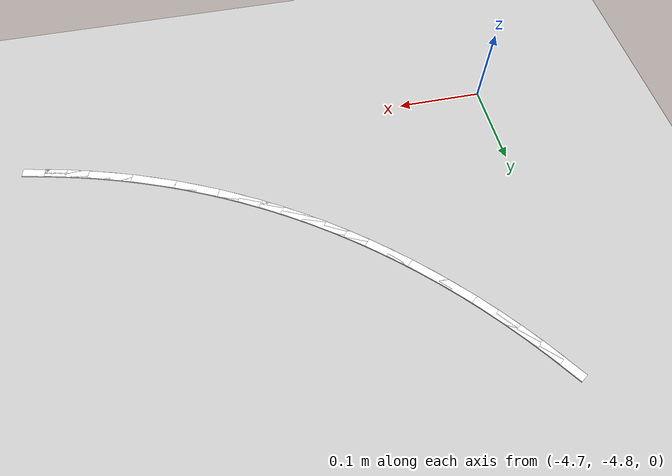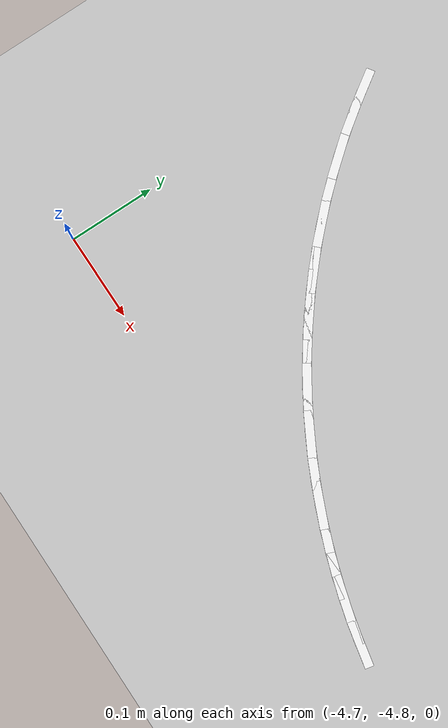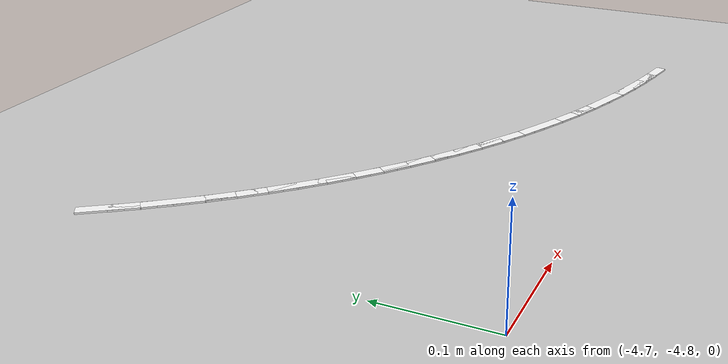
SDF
<sdf version="1.7">
 <world name="default">
  <model name="ground_plane">
   <static>1</static>
   <link name="link">
    <collision name="collision">
     <geometry><plane><normal>0 0 1</normal><size>100 100</size></plane></geometry>
     <surface>
      <contact><collide_bitmask>65535</collide_bitmask></contact>
      <friction><ode><mu>100</mu><mu2>50</mu2></ode></friction>
     </surface>
    </collision>
    <visual name="visual">
     <cast_shadows>0</cast_shadows>
     <geometry><plane><normal>0 0 1</normal><size>100 100</size></plane></geometry>
     <material>
      <script><uri>file://media/materials/scripts/gazebo.material</uri><name>Gazebo/Grey</name></script>
     </material>
    </visual>
   </link>
  </model>
  <model name="lane_line_left_368">
   <static>1</static>
   <link name="link">
    <pose>0 0 -0.004 0 -0 0</pose>
    <visual name="visual">
     <geometry><box><size>0.0521 0.01 0.01</size></box></geometry>
     <material><ambient>1 1 1 1</ambient><diffuse>1 1 1 1</diffuse></material>
    </visual>
    <collision name="collision"><geometry><box><size>0.0521 0.01 0.01</size></box></geometry></collision>
   </link>
   <pose>-4.66328 -4.44705 0 0 0 -0.977741</pose>
  </model>
  <model name="lane_line_left_369">
   <static>1</static>
   <link name="link">
    <pose>0 0 -0.004 0 -0 0</pose>
    <visual name="visual">
     <geometry><box><size>0.0521 0.01 0.01</size></box></geometry>
     <material><ambient>1 1 1 1</ambient><diffuse>1 1 1 1</diffuse></material>
    </visual>
    <collision name="collision"><geometry><box><size>0.0521 0.01 0.01</size></box></geometry></collision>
   </link>
   <pose>-4.64861 -4.46808 0 0 0 -0.945684</pose>
  </model>
  <model name="lane_line_left_370">
   <static>1</static>
   <link name="link">
    <pose>0 0 -0.004 0 -0 0</pose>
    <visual name="visual">
     <geometry><box><size>0.0521 0.01 0.01</size></box></geometry>
     <material><ambient>1 1 1 1</ambient><diffuse>1 1 1 1</diffuse></material>
    </visual>
    <collision name="collision"><geometry><box><size>0.0521 0.01 0.01</size></box></geometry></collision>
   </link>
   <pose>-4.63328 -4.48862 0 0 0 -0.913626</pose>
  </model>
  <model name="lane_line_left_371">
   <static>1</static>
   <link name="link">
    <pose>0 0 -0.004 0 -0 0</pose>
    <visual name="visual">
     <geometry><box><size>0.0521 0.01 0.01</size></box></geometry>
     <material><ambient>1 1 1 1</ambient><diffuse>1 1 1 1</diffuse></material>
    </visual>
    <collision name="collision"><geometry><box><size>0.0521 0.01 0.01</size></box></geometry></collision>
   </link>
   <pose>-4.61729 -4.50867 0 0 0 -0.881569</pose>
  </model>
  <model name="lane_line_left_372">
   <static>1</static>
   <link name="link">
    <pose>0 0 -0.004 0 -0 0</pose>
    <visual name="visual">
     <geometry><box><size>0.0521 0.01 0.01</size></box></geometry>
     <material><ambient>1 1 1 1</ambient><diffuse>1 1 1 1</diffuse></material>
    </visual>
    <collision name="collision"><geometry><box><size>0.0521 0.01 0.01</size></box></geometry></collision>
   </link>
   <pose>-4.60067 -4.52819 0 0 0 -0.849512</pose>
  </model>
  <model name="lane_line_left_373">
   <static>1</static>
   <link name="link">
    <pose>0 0 -0.004 0 -0 0</pose>
    <visual name="visual">
     <geometry><box><size>0.0521 0.01 0.01</size></box></geometry>
     <material><ambient>1 1 1 1</ambient><diffuse>1 1 1 1</diffuse></material>
    </visual>
    <collision name="collision"><geometry><box><size>0.0521 0.01 0.01</size></box></geometry></collision>
   </link>
   <pose>-4.58343 -4.54718 0 0 0 -0.817455</pose>
  </model>
  <model name="lane_line_left_374">
   <static>1</static>
   <link name="link">
    <pose>0 0 -0.004 0 -0 0</pose>
    <visual name="visual">
     <geometry><box><size>0.0521 0.01 0.01</size></box></geometry>
     <material><ambient>1 1 1 1</ambient><diffuse>1 1 1 1</diffuse></material>
    </visual>
    <collision name="collision"><geometry><box><size>0.0521 0.01 0.01</size></box></geometry></collision>
   </link>
   <pose>-4.56559 -4.56559 0 0 0 -0.785398</pose>
  </model>
  <model name="lane_line_left_375">
   <static>1</static>
   <link name="link">
    <pose>0 0 -0.004 0 -0 0</pose>
    <visual name="visual">
     <geometry><box><size>0.0521 0.01 0.01</size></box></geometry>
     <material><ambient>1 1 1 1</ambient><diffuse>1 1 1 1</diffuse></material>
    </visual>
    <collision name="collision"><geometry><box><size>0.0521 0.01 0.01</size></box></geometry></collision>
   </link>
   <pose>-4.54718 -4.58343 0 0 0 -0.753341</pose>
  </model>
  <model name="lane_line_left_376">
   <static>1</static>
   <link name="link">
    <pose>0 0 -0.004 0 -0 0</pose>
    <visual name="visual">
     <geometry><box><size>0.0521 0.01 0.01</size></box></geometry>
     <material><ambient>1 1 1 1</ambient><diffuse>1 1 1 1</diffuse></material>
    </visual>
    <collision name="collision"><geometry><box><size>0.0521 0.01 0.01</size></box></geometry></collision>
   </link>
   <pose>-4.52819 -4.60067 0 0 0 -0.721284</pose>
  </model>
  <model name="lane_line_left_377">
   <static>1</static>
   <link name="link">
    <pose>0 0 -0.004 0 -0 0</pose>
    <visual name="visual">
     <geometry><box><size>0.0521 0.01 0.01</size></box></geometry>
     <material><ambient>1 1 1 1</ambient><diffuse>1 1 1 1</diffuse></material>
    </visual>
    <collision name="collision"><geometry><box><size>0.0521 0.01 0.01</size></box></geometry></collision>
   </link>
   <pose>-4.50867 -4.61729 0 0 0 -0.689227</pose>
  </model>
  <model name="lane_line_left_378">
   <static>1</static>
   <link name="link">
    <pose>0 0 -0.004 0 -0 0</pose>
    <visual name="visual">
     <geometry><box><size>0.0521 0.01 0.01</size></box></geometry>
     <material><ambient>1 1 1 1</ambient><diffuse>1 1 1 1</diffuse></material>
    </visual>
    <collision name="collision"><geometry><box><size>0.0521 0.01 0.01</size></box></geometry></collision>
   </link>
   <pose>-4.48862 -4.63328 0 0 0 -0.65717</pose>
  </model>
  <model name="lane_line_left_379">
   <static>1</static>
   <link name="link">
    <pose>0 0 -0.004 0 -0 0</pose>
    <visual name="visual">
     <geometry><box><size>0.0521 0.01 0.01</size></box></geometry>
     <material><ambient>1 1 1 1</ambient><diffuse>1 1 1 1</diffuse></material>
    </visual>
    <collision name="collision"><geometry><box><size>0.0521 0.01 0.01</size></box></geometry></collision>
   </link>
   <pose>-4.46808 -4.64861 0 0 0 -0.625113</pose>
  </model>
  <model name="lane_line_left_380">
   <static>1</static>
   <link name="link">
    <pose>0 0 -0.004 0 -0 0</pose>
    <visual name="visual">
     <geometry><box><size>0.0521 0.01 0.01</size></box></geometry>
     <material><ambient>1 1 1 1</ambient><diffuse>1 1 1 1</diffuse></material>
    </visual>
    <collision name="collision"><geometry><box><size>0.0521 0.01 0.01</size></box></geometry></collision>
   </link>
   <pose>-4.44705 -4.66328 0 0 0 -0.593056</pose>
  </model>
  <model name="lane_line_left_381">
   <static>1</static>
   <link name="link">
    <pose>0 0 -0.004 0 -0 0</pose>
    <visual name="visual">
     <geometry><box><size>0.0521 0.01 0.01</size></box></geometry>
     <material><ambient>1 1 1 1</ambient><diffuse>1 1 1 1</diffuse></material>
    </visual>
    <collision name="collision"><geometry><box><size>0.0521 0.01 0.01</size></box></geometry></collision>
   </link>
   <pose>-4.42556 -4.67727 0 0 0 -0.560999</pose>
  </model>
  <model name="lane_line_left_382">
   <static>1</static>
   <link name="link">
    <pose>0 0 -0.004 0 -0 0</pose>
    <visual name="visual">
     <geometry><box><size>0.0521 0.01 0.01</size></box></geometry>
     <material><ambient>1 1 1 1</ambient><diffuse>1 1 1 1</diffuse></material>
    </visual>
    <collision name="collision"><geometry><box><size>0.0521 0.01 0.01</size></box></geometry></collision>
   </link>
   <pose>-4.40363 -4.69056 0 0 0 -0.528942</pose>
  </model>
  <model name="lane_line_left_383">
   <static>1</static>
   <link name="link">
    <pose>0 0 -0.004 0 -0 0</pose>
    <visual name="visual">
     <geometry><box><size>0.0521 0.01 0.01</size></box></geometry>
     <material><ambient>1 1 1 1</ambient><diffuse>1 1 1 1</diffuse></material>
    </visual>
    <collision name="collision"><geometry><box><size>0.0521 0.01 0.01</size></box></geometry></collision>
   </link>
   <pose>-4.38129 -4.70314 0 0 0 -0.496885</pose>
  </model>
  <model name="lane_line_left_384">
   <static>1</static>
   <link name="link">
    <pose>0 0 -0.004 0 -0 0</pose>
    <visual name="visual">
     <geometry><box><size>0.0521 0.01 0.01</size></box></geometry>
     <material><ambient>1 1 1 1</ambient><diffuse>1 1 1 1</diffuse></material>
    </visual>
    <collision name="collision"><geometry><box><size>0.0521 0.01 0.01</size></box></geometry></collision>
   </link>
   <pose>-4.35856 -4.715 0 0 0 -0.464827</pose>
  </model>
  <model name="lane_line_left_385">
   <static>1</static>
   <link name="link">
    <pose>0 0 -0.004 0 -0 0</pose>
    <visual name="visual">
     <geometry><box><size>0.0521 0.01 0.01</size></box></geometry>
     <material><ambient>1 1 1 1</ambient><diffuse>1 1 1 1</diffuse></material>
    </visual>
    <collision name="collision"><geometry><box><size>0.0521 0.01 0.01</size></box></geometry></collision>
   </link>
   <pose>-4.33546 -4.72613 0 0 0 -0.43277</pose>
  </model>
  <model name="lane_line_left_386">
   <static>1</static>
   <link name="link">
    <pose>0 0 -0.004 0 -0 0</pose>
    <visual name="visual">
     <geometry><box><size>0.0521 0.01 0.01</size></box></geometry>
     <material><ambient>1 1 1 1</ambient><diffuse>1 1 1 1</diffuse></material>
    </visual>
    <collision name="collision"><geometry><box><size>0.0521 0.01 0.01</size></box></geometry></collision>
   </link>
   <pose>-4.31201 -4.73651 0 0 0 -0.400713</pose>
  </model>
  <model name="lane_line_left_387">
   <static>1</static>
   <link name="link">
    <pose>0 0 -0.004 0 -0 0</pose>
    <visual name="visual">
     <geometry><box><size>0.0521 0.01 0.01</size></box></geometry>
     <material><ambient>1 1 1 1</ambient><diffuse>1 1 1 1</diffuse></material>
    </visual>
    <collision name="collision"><geometry><box><size>0.0521 0.01 0.01</size></box></geometry></collision>
   </link>
   <pose>-4.28824 -4.74613 0 0 0 -0.368656</pose>
  </model>
  <model name="lane_line_left_388">
   <static>1</static>
   <link name="link">
    <pose>0 0 -0.004 0 -0 0</pose>
    <visual name="visual">
     <geometry><box><size>0.0521 0.01 0.01</size></box></geometry>
     <material><ambient>1 1 1 1</ambient><diffuse>1 1 1 1</diffuse></material>
    </visual>
    <collision name="collision"><geometry><box><size>0.0521 0.01 0.01</size></box></geometry></collision>
   </link>
   <pose>-4.26418 -4.75499 0 0 0 -0.336599</pose>
  </model>
  <model name="lane_line_left_389">
   <static>1</static>
   <link name="link">
    <pose>0 0 -0.004 0 -0 0</pose>
    <visual name="visual">
     <geometry><box><size>0.0521 0.01 0.01</size></box></geometry>
     <material><ambient>1 1 1 1</ambient><diffuse>1 1 1 1</diffuse></material>
    </visual>
    <collision name="collision"><geometry><box><size>0.0521 0.01 0.01</size></box></geometry></collision>
   </link>
   <pose>-4.23985 -4.76306 0 0 0 -0.304542</pose>
  </model>
  <model name="lane_line_left_390">
   <static>1</static>
   <link name="link">
    <pose>0 0 -0.004 0 -0 0</pose>
    <visual name="visual">
     <geometry><box><size>0.0521 0.01 0.01</size></box></geometry>
     <material><ambient>1 1 1 1</ambient><diffuse>1 1 1 1</diffuse></material>
    </visual>
    <collision name="collision"><geometry><box><size>0.0521 0.01 0.01</size></box></geometry></collision>
   </link>
   <pose>-4.21527 -4.77036 0 0 0 -0.272485</pose>
  </model>
  <model name="lane_line_left_391">
   <static>1</static>
   <link name="link">
    <pose>0 0 -0.004 0 -0 0</pose>
    <visual name="visual">
     <geometry><box><size>0.0521 0.01 0.01</size></box></geometry>
     <material><ambient>1 1 1 1</ambient><diffuse>1 1 1 1</diffuse></material>
    </visual>
    <collision name="collision"><geometry><box><size>0.0521 0.01 0.01</size></box></geometry></collision>
   </link>
   <pose>-4.19046 -4.77686 0 0 0 -0.240428</pose>
  </model>
  <model name="lane_line_left_392">
   <static>1</static>
   <link name="link">
    <pose>0 0 -0.004 0 -0 0</pose>
    <visual name="visual">
     <geometry><box><size>0.0521 0.01 0.01</size></box></geometry>
     <material><ambient>1 1 1 1</ambient><diffuse>1 1 1 1</diffuse></material>
    </visual>
    <collision name="collision"><geometry><box><size>0.0521 0.01 0.01</size></box></geometry></collision>
   </link>
   <pose>-4.16547 -4.78257 0 0 0 -0.208371</pose>
  </model>
 </world>
</sdf>
